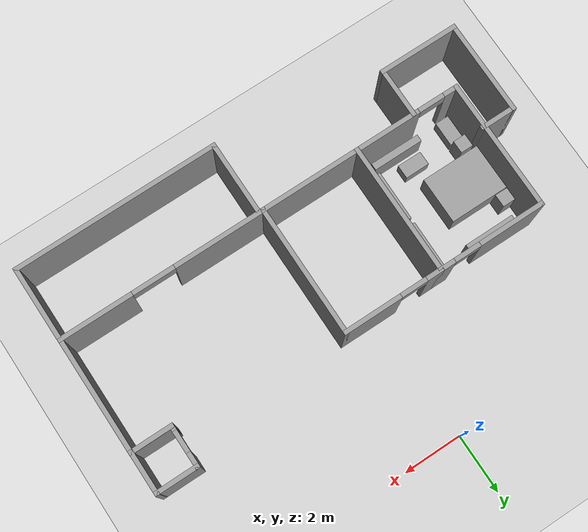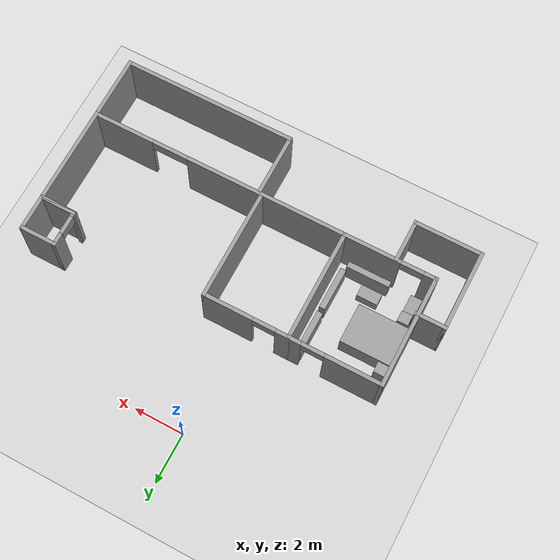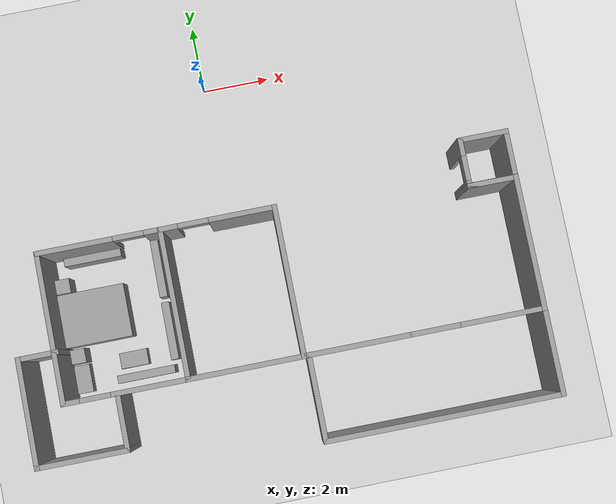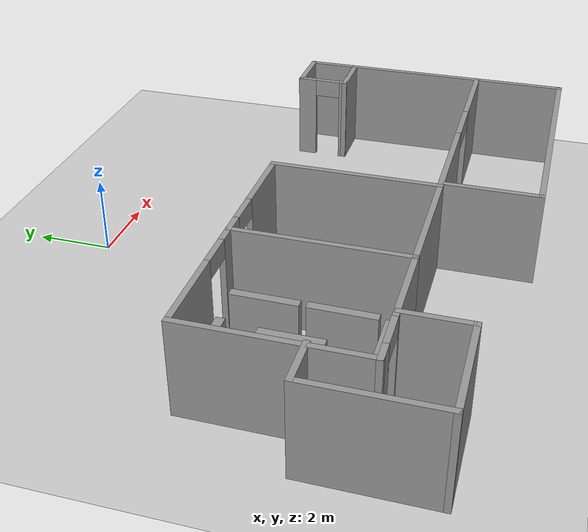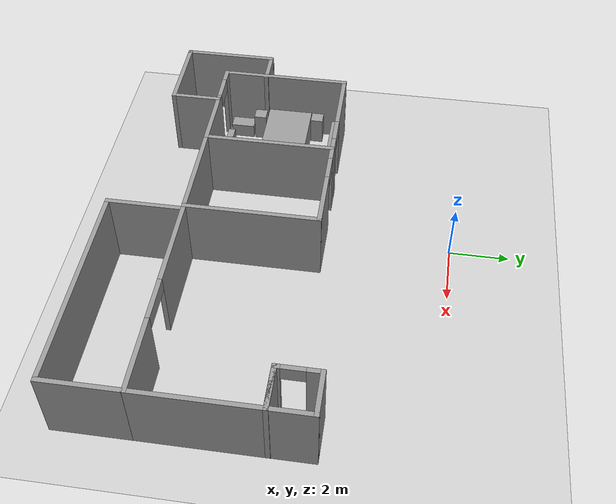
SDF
<sdf version="1.6">
 <world name="default">
  <model name="ground_plane">
   <static>1</static>
   <link name="link">
    <collision name="collision">
     <geometry><plane><normal>0 0 1</normal><size>100 100</size></plane></geometry>
     <surface><friction><ode><mu>100</mu><mu2>50</mu2></ode></friction></surface>
    </collision>
    <visual name="visual">
     <cast_shadows>0</cast_shadows>
     <geometry><plane><normal>0 0 1</normal><size>100 100</size></plane></geometry>
     <material>
      <script><uri>file://media/materials/scripts/gazebo.material</uri><name>Gazebo/Grey</name></script>
     </material>
    </visual>
   </link>
  </model>
  <model name="cma_quartos">
   <pose>-2.58169 -7.26456 0 0 -0 0</pose>
   <link name="Wall_0">
    <collision name="Wall_0_Collision">
     <geometry><box><size>4.5 0.15 2.5</size></box></geometry>
     <pose>0 0 1.25 0 -0 0</pose>
    </collision>
    <visual name="Wall_0_Visual">
     <pose>0 0 1.25 0 -0 0</pose>
     <geometry><box><size>4.5 0.15 2.5</size></box></geometry>
     <material>
      <script><uri>file://media/materials/scripts/gazebo.material</uri><name>Gazebo/Grey</name></script>
      <ambient>1 1 1 1</ambient>
     </material>
    </visual>
    <pose>0.645 0.81 0 0 0 -1.5708</pose>
   </link>
   <link name="Wall_1">
    <pose>-1.155 -1.365 0 0 -0 3.14159</pose>
    <visual name="Wall_1_Visual_0">
     <pose>-0.7225 0 1.25 0 -0 0</pose>
     <geometry><box><size>2.305 0.15 2.5</size></box></geometry>
     <material>
      <script><uri>file://media/materials/scripts/gazebo.material</uri><name>Gazebo/Grey</name></script>
      <ambient>1 1 1 1</ambient>
     </material>
    </visual>
    <collision name="Wall_1_Collision_0">
     <geometry><box><size>2.305 0.15 2.5</size></box></geometry>
     <pose>-0.7225 0 1.25 0 -0 0</pose>
    </collision>
    <visual name="Wall_1_Visual_1">
     <pose>1.6025 0 1.25 0 -0 0</pose>
     <geometry><box><size>0.545 0.15 2.5</size></box></geometry>
     <material>
      <script><uri>file://media/materials/scripts/gazebo.material</uri><name>Gazebo/Grey</name></script>
      <ambient>1 1 1 1</ambient>
     </material>
    </visual>
    <collision name="Wall_1_Collision_1">
     <geometry><box><size>0.545 0.15 2.5</size></box></geometry>
     <pose>1.6025 0 1.25 0 -0 0</pose>
    </collision>
    <visual name="Wall_1_Visual_2">
     <pose>0.88 0 2.25 0 -0 0</pose>
     <geometry><box><size>0.9 0.15 0.5</size></box></geometry>
     <material>
      <script><uri>file://media/materials/scripts/gazebo.material</uri><name>Gazebo/Grey</name></script>
      <ambient>1 1 1 1</ambient>
     </material>
    </visual>
    <collision name="Wall_1_Collision_2">
     <geometry><box><size>0.9 0.15 0.5</size></box></geometry>
     <pose>0.88 0 2.25 0 -0 0</pose>
    </collision>
   </link>
   <link name="Wall_10">
    <collision name="Wall_10_Collision">
     <geometry><box><size>1.75 0.15 2.5</size></box></geometry>
     <pose>0 0 1.25 0 -0 0</pose>
    </collision>
    <visual name="Wall_10_Visual">
     <pose>0 0 1.25 0 -0 0</pose>
     <geometry><box><size>1.75 0.15 2.5</size></box></geometry>
     <material>
      <script><uri>file://media/materials/scripts/gazebo.material</uri><name>Gazebo/Grey</name></script>
      <ambient>1 1 1 1</ambient>
     </material>
    </visual>
    <pose>-1.395 -2.185 0 0 0 -1.5708</pose>
   </link>
   <link name="Wall_11">
    <collision name="Wall_11_Collision">
     <geometry><box><size>2.75 0.15 2.5</size></box></geometry>
     <pose>0 0 1.25 0 -0 0</pose>
    </collision>
    <visual name="Wall_11_Visual">
     <pose>0 0 1.25 0 -0 0</pose>
     <geometry><box><size>2.75 0.15 2.5</size></box></geometry>
     <material>
      <script><uri>file://media/materials/scripts/gazebo.material</uri><name>Gazebo/Grey</name></script>
      <ambient>1 1 1 1</ambient>
     </material>
    </visual>
    <pose>-2.695 -2.985 0 0 -0 3.14159</pose>
   </link>
   <link name="Wall_12">
    <collision name="Wall_12_Collision">
     <geometry><box><size>3.25 0.15 2.5</size></box></geometry>
     <pose>0 0 1.25 0 -0 0</pose>
    </collision>
    <visual name="Wall_12_Visual">
     <pose>0 0 1.25 0 -0 0</pose>
     <geometry><box><size>3.25 0.15 2.5</size></box></geometry>
     <material>
      <script><uri>file://media/materials/scripts/gazebo.material</uri><name>Gazebo/Grey</name></script>
      <ambient>1 1 1 1</ambient>
     </material>
    </visual>
    <pose>-3.995 -1.435 0 0 -0 1.5708</pose>
   </link>
   <link name="Wall_13">
    <collision name="Wall_13_Collision">
     <geometry><box><size>1.25 0.15 2.5</size></box></geometry>
     <pose>0 0 1.25 0 -0 0</pose>
    </collision>
    <visual name="Wall_13_Visual">
     <pose>0 0 1.25 0 -0 0</pose>
     <geometry><box><size>1.25 0.15 2.5</size></box></geometry>
     <material>
      <script><uri>file://media/materials/scripts/gazebo.material</uri><name>Gazebo/Grey</name></script>
      <ambient>1 1 1 1</ambient>
     </material>
    </visual>
    <pose>-3.445 0.115 0 0 -0 0</pose>
   </link>
   <link name="Wall_2">
    <collision name="Wall_2_Collision">
     <geometry><box><size>4.5 0.15 2.5</size></box></geometry>
     <pose>0 0 1.25 0 -0 0</pose>
    </collision>
    <visual name="Wall_2_Visual">
     <pose>0 0 1.25 0 -0 0</pose>
     <geometry><box><size>4.5 0.15 2.5</size></box></geometry>
     <material>
      <script><uri>file://media/materials/scripts/gazebo.material</uri><name>Gazebo/Grey</name></script>
      <ambient>1 1 1 1</ambient>
     </material>
    </visual>
    <pose>-2.955 0.81 0 0 -0 1.5708</pose>
   </link>
   <link name="Wall_3">
    <pose>-1.155 2.985 0 0 -0 0</pose>
    <visual name="Wall_3_Visual_0">
     <pose>-0.7325 0 1.25 0 -0 0</pose>
     <geometry><box><size>2.285 0.15 2.5</size></box></geometry>
     <material>
      <script><uri>file://media/materials/scripts/gazebo.material</uri><name>Gazebo/Grey</name></script>
      <ambient>1 1 1 1</ambient>
     </material>
    </visual>
    <collision name="Wall_3_Collision_0">
     <geometry><box><size>2.285 0.15 2.5</size></box></geometry>
     <pose>-0.7325 0 1.25 0 -0 0</pose>
    </collision>
    <visual name="Wall_3_Visual_1">
     <pose>1.5925 0 1.25 0 -0 0</pose>
     <geometry><box><size>0.565 0.15 2.5</size></box></geometry>
     <material>
      <script><uri>file://media/materials/scripts/gazebo.material</uri><name>Gazebo/Grey</name></script>
      <ambient>1 1 1 1</ambient>
     </material>
    </visual>
    <collision name="Wall_3_Collision_1">
     <geometry><box><size>0.565 0.15 2.5</size></box></geometry>
     <pose>1.5925 0 1.25 0 -0 0</pose>
    </collision>
    <visual name="Wall_3_Visual_2">
     <pose>0.86 0 2.25 0 -0 0</pose>
     <geometry><box><size>0.9 0.15 0.5</size></box></geometry>
     <material>
      <script><uri>file://media/materials/scripts/gazebo.material</uri><name>Gazebo/Grey</name></script>
      <ambient>1 1 1 1</ambient>
     </material>
    </visual>
    <collision name="Wall_3_Collision_2">
     <geometry><box><size>0.9 0.15 0.5</size></box></geometry>
     <pose>0.86 0 2.25 0 -0 0</pose>
    </collision>
   </link>
   <link name="Wall_6">
    <pose>2.32 2.985 0 0 -0 0</pose>
    <visual name="Wall_6_Visual_0">
     <pose>-1.4575 0 1.25 0 -0 0</pose>
     <geometry><box><size>0.585 0.15 2.5</size></box></geometry>
     <material>
      <script><uri>file://media/materials/scripts/gazebo.material</uri><name>Gazebo/Grey</name></script>
      <ambient>1 1 1 1</ambient>
     </material>
    </visual>
    <collision name="Wall_6_Collision_0">
     <geometry><box><size>0.585 0.15 2.5</size></box></geometry>
     <pose>-1.4575 0 1.25 0 -0 0</pose>
    </collision>
    <visual name="Wall_6_Visual_1">
     <pose>0.7425 0 1.25 0 -0 0</pose>
     <geometry><box><size>2.015 0.15 2.5</size></box></geometry>
     <material>
      <script><uri>file://media/materials/scripts/gazebo.material</uri><name>Gazebo/Grey</name></script>
      <ambient>1 1 1 1</ambient>
     </material>
    </visual>
    <collision name="Wall_6_Collision_1">
     <geometry><box><size>2.015 0.15 2.5</size></box></geometry>
     <pose>0.7425 0 1.25 0 -0 0</pose>
    </collision>
    <visual name="Wall_6_Visual_2">
     <pose>-0.715 0 2.25 0 -0 0</pose>
     <geometry><box><size>0.9 0.15 0.5</size></box></geometry>
     <material>
      <script><uri>file://media/materials/scripts/gazebo.material</uri><name>Gazebo/Grey</name></script>
      <ambient>1 1 1 1</ambient>
     </material>
    </visual>
    <collision name="Wall_6_Collision_2">
     <geometry><box><size>0.9 0.15 0.5</size></box></geometry>
     <pose>-0.715 0 2.25 0 -0 0</pose>
    </collision>
   </link>
   <link name="Wall_7">
    <collision name="Wall_7_Collision">
     <geometry><box><size>4.5 0.15 2.5</size></box></geometry>
     <pose>0 0 1.25 0 -0 0</pose>
    </collision>
    <visual name="Wall_7_Visual">
     <pose>0 0 1.25 0 -0 0</pose>
     <geometry><box><size>4.5 0.15 2.5</size></box></geometry>
     <material>
      <script><uri>file://media/materials/scripts/gazebo.material</uri><name>Gazebo/Grey</name></script>
      <ambient>1 1 1 1</ambient>
     </material>
    </visual>
    <pose>3.995 0.81 0 0 0 -1.5708</pose>
   </link>
   <link name="Wall_8">
    <collision name="Wall_8_Collision">
     <geometry><box><size>3.5 0.15 2.5</size></box></geometry>
     <pose>0 0 1.25 0 -0 0</pose>
    </collision>
    <visual name="Wall_8_Visual">
     <pose>0 0 1.25 0 -0 0</pose>
     <geometry><box><size>3.5 0.15 2.5</size></box></geometry>
     <material>
      <script><uri>file://media/materials/scripts/gazebo.material</uri><name>Gazebo/Grey</name></script>
      <ambient>1 1 1 1</ambient>
     </material>
    </visual>
    <pose>2.32 -1.365 0 0 -0 3.14159</pose>
   </link>
   <static>1</static>
  </model>
  <model name="cma_parede_L">
   <pose>4.97628 -6.69992 0 0 -0 0</pose>
   <link name="Wall_0">
    <pose>0 -1.925 0 0 -0 0</pose>
    <visual name="Wall_0_Visual_0">
     <pose>-1.985 0 1.25 0 -0 0</pose>
     <geometry><box><size>3.03 0.15 2.5</size></box></geometry>
     <material>
      <script><uri>file://media/materials/scripts/gazebo.material</uri><name>Gazebo/Grey</name></script>
      <ambient>1 1 1 1</ambient>
     </material>
    </visual>
    <collision name="Wall_0_Collision_0">
     <geometry><box><size>3.03 0.15 2.5</size></box></geometry>
     <pose>-1.985 0 1.25 0 -0 0</pose>
    </collision>
    <visual name="Wall_0_Visual_1">
     <pose>2.24 0 1.25 0 -0 0</pose>
     <geometry><box><size>2.52 0.15 2.5</size></box></geometry>
     <material>
      <script><uri>file://media/materials/scripts/gazebo.material</uri><name>Gazebo/Grey</name></script>
      <ambient>1 1 1 1</ambient>
     </material>
    </visual>
    <collision name="Wall_0_Collision_1">
     <geometry><box><size>2.52 0.15 2.5</size></box></geometry>
     <pose>2.24 0 1.25 0 -0 0</pose>
    </collision>
    <visual name="Wall_0_Visual_2">
     <pose>0.255 0 2.25 0 -0 0</pose>
     <geometry><box><size>1.45 0.15 0.5</size></box></geometry>
     <material>
      <script><uri>file://media/materials/scripts/gazebo.material</uri><name>Gazebo/Grey</name></script>
      <ambient>1 1 1 1</ambient>
     </material>
    </visual>
    <collision name="Wall_0_Collision_2">
     <geometry><box><size>1.45 0.15 0.5</size></box></geometry>
     <pose>0.255 0 2.25 0 -0 0</pose>
    </collision>
   </link>
   <link name="Wall_1">
    <collision name="Wall_1_Collision">
     <geometry><box><size>4 0.15 2.5</size></box></geometry>
     <pose>0 0 1.25 0 -0 0</pose>
    </collision>
    <visual name="Wall_1_Visual">
     <pose>0 0 1.25 0 -0 0</pose>
     <geometry><box><size>4 0.15 2.5</size></box></geometry>
     <material>
      <script><uri>file://media/materials/scripts/gazebo.material</uri><name>Gazebo/Grey</name></script>
      <ambient>1 1 1 1</ambient>
     </material>
    </visual>
    <pose>3.425 0 0 0 -0 1.5708</pose>
   </link>
   <link name="Wall_2">
    <collision name="Wall_2_Collision">
     <geometry><box><size>1.5 0.15 2.5</size></box></geometry>
     <pose>0 0 1.25 0 -0 0</pose>
    </collision>
    <visual name="Wall_2_Visual">
     <pose>0 0 1.25 0 -0 0</pose>
     <geometry><box><size>1.5 0.15 2.5</size></box></geometry>
     <material>
      <script><uri>file://media/materials/scripts/gazebo.material</uri><name>Gazebo/Grey</name></script>
      <ambient>1 1 1 1</ambient>
     </material>
    </visual>
    <pose>2.75 1.925 0 0 -0 3.14159</pose>
   </link>
   <static>1</static>
  </model>
  <model name="cma_lavabo">
   <pose>7.72297 -4.09302 0 0 -0 0</pose>
   <link name="Wall_4">
    <pose>-0.675 0 0 0 -0 1.5708</pose>
    <visual name="Wall_4_Visual_0">
     <pose>-0.635 0 1.25 0 -0 0</pose>
     <geometry><box><size>0.23 0.15 2.5</size></box></geometry>
     <material>
      <script><uri>file://media/materials/scripts/gazebo.material</uri><name>Gazebo/Grey</name></script>
      <ambient>1 1 1 1</ambient>
     </material>
    </visual>
    <collision name="Wall_4_Collision_0">
     <geometry><box><size>0.23 0.15 2.5</size></box></geometry>
     <pose>-0.635 0 1.25 0 -0 0</pose>
    </collision>
    <visual name="Wall_4_Visual_1">
     <pose>0.48 0 1.25 0 -0 0</pose>
     <geometry><box><size>0.54 0.15 2.5</size></box></geometry>
     <material>
      <script><uri>file://media/materials/scripts/gazebo.material</uri><name>Gazebo/Grey</name></script>
      <ambient>1 1 1 1</ambient>
     </material>
    </visual>
    <collision name="Wall_4_Collision_1">
     <geometry><box><size>0.54 0.15 2.5</size></box></geometry>
     <pose>0.48 0 1.25 0 -0 0</pose>
    </collision>
    <visual name="Wall_4_Visual_2">
     <pose>-0.155 0 2.25 0 -0 0</pose>
     <geometry><box><size>0.73 0.15 0.5</size></box></geometry>
     <material>
      <script><uri>file://media/materials/scripts/gazebo.material</uri><name>Gazebo/Grey</name></script>
      <ambient>1 1 1 1</ambient>
     </material>
    </visual>
    <collision name="Wall_4_Collision_2">
     <geometry><box><size>0.73 0.15 0.5</size></box></geometry>
     <pose>-0.155 0 2.25 0 -0 0</pose>
    </collision>
   </link>
   <link name="Wall_5">
    <collision name="Wall_5_Collision">
     <geometry><box><size>1.5 0.15 2.5</size></box></geometry>
     <pose>0 0 1.25 0 -0 0</pose>
    </collision>
    <visual name="Wall_5_Visual">
     <pose>0 0 1.25 0 -0 0</pose>
     <geometry><box><size>1.5 0.15 2.5</size></box></geometry>
     <material>
      <script><uri>file://media/materials/scripts/gazebo.material</uri><name>Gazebo/Grey</name></script>
      <ambient>1 1 1 1</ambient>
     </material>
    </visual>
    <pose>0 0.675 0 0 -0 0</pose>
   </link>
   <link name="Wall_6">
    <collision name="Wall_6_Collision">
     <geometry><box><size>1.5 0.15 2.5</size></box></geometry>
     <pose>0 0 1.25 0 -0 0</pose>
    </collision>
    <visual name="Wall_6_Visual">
     <pose>0 0 1.25 0 -0 0</pose>
     <geometry><box><size>1.5 0.15 2.5</size></box></geometry>
     <material>
      <script><uri>file://media/materials/scripts/gazebo.material</uri><name>Gazebo/Grey</name></script>
      <ambient>1 1 1 1</ambient>
     </material>
    </visual>
    <pose>0.675 0 0 0 0 -1.5708</pose>
   </link>
   <link name="Wall_7">
    <collision name="Wall_7_Collision">
     <geometry><box><size>1.5 0.15 2.5</size></box></geometry>
     <pose>0 0 1.25 0 -0 0</pose>
    </collision>
    <visual name="Wall_7_Visual">
     <pose>0 0 1.25 0 -0 0</pose>
     <geometry><box><size>1.5 0.15 2.5</size></box></geometry>
     <material>
      <script><uri>file://media/materials/scripts/gazebo.material</uri><name>Gazebo/Grey</name></script>
      <ambient>1 1 1 1</ambient>
     </material>
    </visual>
    <pose>0 -0.675 0 0 -0 3.14159</pose>
   </link>
   <static>1</static>
  </model>
  <model name="cma_U">
   <pose>4.97895 -9.92408 0 0 -0 0</pose>
   <link name="Wall_16">
    <collision name="Wall_16_Collision">
     <geometry><box><size>2.5 0.15 2.5</size></box></geometry>
     <pose>0 0 1.25 0 -0 0</pose>
    </collision>
    <visual name="Wall_16_Visual">
     <pose>0 0 1.25 0 -0 0</pose>
     <geometry><box><size>2.5 0.15 2.5</size></box></geometry>
     <material>
      <script><uri>file://media/materials/scripts/gazebo.material</uri><name>Gazebo/Grey</name></script>
      <ambient>1 1 1 1</ambient>
     </material>
    </visual>
    <pose>-3.425 0 0 0 0 -1.5708</pose>
   </link>
   <link name="Wall_17">
    <collision name="Wall_17_Collision">
     <geometry><box><size>7 0.15 2.5</size></box></geometry>
     <pose>0 0 1.25 0 -0 0</pose>
    </collision>
    <visual name="Wall_17_Visual">
     <pose>0 0 1.25 0 -0 0</pose>
     <geometry><box><size>7 0.15 2.5</size></box></geometry>
     <material>
      <script><uri>file://media/materials/scripts/gazebo.material</uri><name>Gazebo/Grey</name></script>
      <ambient>1 1 1 1</ambient>
     </material>
    </visual>
    <pose>0 -1.175 0 0 -0 0</pose>
   </link>
   <link name="Wall_18">
    <collision name="Wall_18_Collision">
     <geometry><box><size>2.5 0.15 2.5</size></box></geometry>
     <pose>0 0 1.25 0 -0 0</pose>
    </collision>
    <visual name="Wall_18_Visual">
     <pose>0 0 1.25 0 -0 0</pose>
     <geometry><box><size>2.5 0.15 2.5</size></box></geometry>
     <material>
      <script><uri>file://media/materials/scripts/gazebo.material</uri><name>Gazebo/Grey</name></script>
      <ambient>1 1 1 1</ambient>
     </material>
    </visual>
    <pose>3.425 0 0 0 -0 1.5708</pose>
   </link>
   <static>1</static>
  </model>
  <model name="cma_cama_c">
   <link name="link_0">
    <pose>5e-06 -4e-06 0 0 -0 0</pose>
    <inertial>
     <mass>3.18358</mass>
     <inertia><ixx>0.934862</ixx><ixy>0</ixy><ixz>0</ixz><iyy>1.33069</iyy><iyz>0</iyz><izz>1.73496</izz></inertia>
    </inertial>
    <visual name="visual">
     <geometry><box><size>2.00394 1.58866 1</size></box></geometry>
     <material>
      <lighting>1</lighting>
      <script><uri>file://media/materials/scripts/gazebo.material</uri><name>Gazebo/Grey</name></script>
      <ambient>0.3 0.3 0.3 1</ambient>
      <diffuse>0.7 0.7 0.7 1</diffuse>
      <specular>0.01 0.01 0.01 1</specular>
      <emissive>0 0 0 1</emissive>
     </material>
    </visual>
    <collision name="collision">
     <geometry><box><size>2.00394 1.58866 1</size></box></geometry>
     <surface>
      <friction>
       <ode><mu>1</mu><mu2>1</mu2><fdir1>0 0 0</fdir1><slip1>0</slip1><slip2>0</slip2></ode>
       <torsional>
        <coefficient>1</coefficient>
        <patch_radius>0</patch_radius>
        <surface_radius>0</surface_radius>
        <use_patch_radius>1</use_patch_radius>
        <ode><slip>0</slip></ode>
       </torsional>
      </friction>
      <bounce><restitution_coefficient>0</restitution_coefficient><threshold>1e+06</threshold></bounce>
      <contact>
       <collide_without_contact>0</collide_without_contact>
       <collide_without_contact_bitmask>1</collide_without_contact_bitmask>
       <collide_bitmask>1</collide_bitmask>
       <ode>
        <soft_cfm>0</soft_cfm>
        <soft_erp>0.2</soft_erp>
        <kp>1e+13</kp>
        <kd>1</kd>
        <max_vel>0.01</max_vel>
        <min_depth>0</min_depth>
       </ode>
       <bullet>
        <split_impulse>1</split_impulse>
        <split_impulse_penetration_threshold>-0.01</split_impulse_penetration_threshold>
        <soft_cfm>0</soft_cfm>
        <soft_erp>0.2</soft_erp>
        <kp>1e+13</kp>
        <kd>1</kd>
       </bullet>
      </contact>
     </surface>
    </collision>
   </link>
   <static>0</static>
   <pose>-4.43933 -6.24816 0.5 0 -0 0</pose>
  </model>
  <model name="cma_armario_0">
   <link name="link_0">
    <pose>1.32157 0.885178 0.5 0 -0 0</pose>
    <inertial>
     <mass>0.402376</mass>
     <inertia>
      <ixx>0.0353686</ixx>
      <ixy>0</ixy>
      <ixz>0</ixz>
      <iyy>0.132616</iyy>
      <iyz>0</iyz>
      <izz>0.100922</izz>
     </inertia>
    </inertial>
    <visual name="visual">
     <geometry><box><size>1.71877 0.234069 1</size></box></geometry>
     <material>
      <lighting>1</lighting>
      <script><uri>file://media/materials/scripts/gazebo.material</uri><name>Gazebo/Grey</name></script>
      <ambient>0.3 0.3 0.3 1</ambient>
      <diffuse>0.7 0.7 0.7 1</diffuse>
      <specular>0.01 0.01 0.01 1</specular>
      <emissive>0 0 0 1</emissive>
     </material>
    </visual>
    <collision name="collision">
     <geometry><box><size>1.71877 0.234069 1</size></box></geometry>
     <surface>
      <friction>
       <ode><mu>1</mu><mu2>1</mu2><fdir1>0 0 0</fdir1><slip1>0</slip1><slip2>0</slip2></ode>
       <torsional>
        <coefficient>1</coefficient>
        <patch_radius>0</patch_radius>
        <surface_radius>0</surface_radius>
        <use_patch_radius>1</use_patch_radius>
        <ode><slip>0</slip></ode>
       </torsional>
      </friction>
      <bounce><restitution_coefficient>0</restitution_coefficient><threshold>1e+06</threshold></bounce>
      <contact>
       <collide_without_contact>0</collide_without_contact>
       <collide_without_contact_bitmask>1</collide_without_contact_bitmask>
       <collide_bitmask>1</collide_bitmask>
       <ode>
        <soft_cfm>0</soft_cfm>
        <soft_erp>0.2</soft_erp>
        <kp>1e+13</kp>
        <kd>1</kd>
        <max_vel>0.01</max_vel>
        <min_depth>0</min_depth>
       </ode>
       <bullet>
        <split_impulse>1</split_impulse>
        <split_impulse_penetration_threshold>-0.01</split_impulse_penetration_threshold>
        <soft_cfm>0</soft_cfm>
        <soft_erp>0.2</soft_erp>
        <kp>1e+13</kp>
        <kd>1</kd>
       </bullet>
      </contact>
     </surface>
    </collision>
   </link>
   <static>0</static>
   <pose>-5.51793 -5.41207 0 0 -0 0</pose>
  </model>
  <model name="cma_gaveteiro_pequeno_1">
   <link name="link_0">
    <pose>0.256174 1.25055 0.5 0 -0 0</pose>
    <inertial>
     <mass>0.187186</mass>
     <inertia>
      <ixx>0.01851</ixx>
      <ixy>0</ixy>
      <ixz>0</ixz>
      <iyy>0.0185276</iyy>
      <iyz>0</iyz>
      <izz>0.00583981</izz>
     </inertia>
    </inertial>
    <visual name="visual">
     <geometry><box><size>0.433317 0.432002 1</size></box></geometry>
     <material>
      <lighting>1</lighting>
      <script><uri>file://media/materials/scripts/gazebo.material</uri><name>Gazebo/Grey</name></script>
      <ambient>0.3 0.3 0.3 1</ambient>
      <diffuse>0.7 0.7 0.7 1</diffuse>
      <specular>0.01 0.01 0.01 1</specular>
      <emissive>0 0 0 1</emissive>
     </material>
    </visual>
    <collision name="collision">
     <geometry><box><size>0.433317 0.432002 1</size></box></geometry>
     <surface>
      <friction>
       <ode><mu>1</mu><mu2>1</mu2><fdir1>0 0 0</fdir1><slip1>0</slip1><slip2>0</slip2></ode>
       <torsional>
        <coefficient>1</coefficient>
        <patch_radius>0</patch_radius>
        <surface_radius>0</surface_radius>
        <use_patch_radius>1</use_patch_radius>
        <ode><slip>0</slip></ode>
       </torsional>
      </friction>
      <bounce><restitution_coefficient>0</restitution_coefficient><threshold>1e+06</threshold></bounce>
      <contact>
       <collide_without_contact>0</collide_without_contact>
       <collide_without_contact_bitmask>1</collide_without_contact_bitmask>
       <collide_bitmask>1</collide_bitmask>
       <ode>
        <soft_cfm>0</soft_cfm>
        <soft_erp>0.2</soft_erp>
        <kp>1e+13</kp>
        <kd>1</kd>
        <max_vel>0.01</max_vel>
        <min_depth>0</min_depth>
       </ode>
       <bullet>
        <split_impulse>1</split_impulse>
        <split_impulse_penetration_threshold>-0.01</split_impulse_penetration_threshold>
        <soft_cfm>0</soft_cfm>
        <soft_erp>0.2</soft_erp>
        <kp>1e+13</kp>
        <kd>1</kd>
       </bullet>
      </contact>
     </surface>
    </collision>
   </link>
   <static>0</static>
   <pose>-5.47475 -6.46325 0 0 -0 0</pose>
  </model>
  <model name="cma_armario_s_0">
   <link name="link_1">
    <pose>-2e-06 -3e-06 0 0 -0 0</pose>
    <inertial>
     <mass>0.390159</mass>
     <inertia>
      <ixx>0.039647</ixx>
      <ixy>0</ixy>
      <ixz>0</ixz>
      <iyy>0.0550708</iyy>
      <iyz>0</iyz>
      <izz>0.0296912</izz>
     </inertia>
    </inertial>
    <visual name="visual">
     <geometry><box><size>0.832942 0.468397 1</size></box></geometry>
     <material>
      <lighting>1</lighting>
      <script><uri>file://media/materials/scripts/gazebo.material</uri><name>Gazebo/Grey</name></script>
      <ambient>0.3 0.3 0.3 1</ambient>
      <diffuse>0.7 0.7 0.7 1</diffuse>
      <specular>0.01 0.01 0.01 1</specular>
      <emissive>0 0 0 1</emissive>
     </material>
    </visual>
    <collision name="collision">
     <geometry><box><size>0.832942 0.468397 1</size></box></geometry>
     <surface>
      <friction>
       <ode><mu>1</mu><mu2>1</mu2><fdir1>0 0 0</fdir1><slip1>0</slip1><slip2>0</slip2></ode>
       <torsional>
        <coefficient>1</coefficient>
        <patch_radius>0</patch_radius>
        <surface_radius>0</surface_radius>
        <use_patch_radius>1</use_patch_radius>
        <ode><slip>0</slip></ode>
       </torsional>
      </friction>
      <bounce><restitution_coefficient>0</restitution_coefficient><threshold>1e+06</threshold></bounce>
      <contact>
       <collide_without_contact>0</collide_without_contact>
       <collide_without_contact_bitmask>1</collide_without_contact_bitmask>
       <collide_bitmask>1</collide_bitmask>
       <ode>
        <soft_cfm>0</soft_cfm>
        <soft_erp>0.2</soft_erp>
        <kp>1e+13</kp>
        <kd>1</kd>
        <max_vel>0.01</max_vel>
        <min_depth>0</min_depth>
       </ode>
       <bullet>
        <split_impulse>1</split_impulse>
        <split_impulse_penetration_threshold>-0.01</split_impulse_penetration_threshold>
        <soft_cfm>0</soft_cfm>
        <soft_erp>0.2</soft_erp>
        <kp>1e+13</kp>
        <kd>1</kd>
       </bullet>
      </contact>
     </surface>
    </collision>
   </link>
   <static>0</static>
   <pose>-5.16836 -8.01553 0 0 0 -1.57518</pose>
  </model>
  <model name="cma_gaveteiro_pequeno_2">
   <link name="link_0">
    <pose>0.256174 1.25055 0.5 0 -0 0</pose>
    <inertial>
     <mass>0.187186</mass>
     <inertia>
      <ixx>0.01851</ixx>
      <ixy>0</ixy>
      <ixz>0</ixz>
      <iyy>0.0185276</iyy>
      <iyz>0</iyz>
      <izz>0.00583981</izz>
     </inertia>
    </inertial>
    <visual name="visual">
     <geometry><box><size>0.433317 0.432002 1</size></box></geometry>
     <material>
      <lighting>1</lighting>
      <script><uri>file://media/materials/scripts/gazebo.material</uri><name>Gazebo/Grey</name></script>
      <ambient>0.3 0.3 0.3 1</ambient>
      <diffuse>0.7 0.7 0.7 1</diffuse>
      <specular>0.01 0.01 0.01 1</specular>
      <emissive>0 0 0 1</emissive>
     </material>
    </visual>
    <collision name="collision">
     <geometry><box><size>0.433317 0.432002 1</size></box></geometry>
     <surface>
      <friction>
       <ode><mu>1</mu><mu2>1</mu2><fdir1>0 0 0</fdir1><slip1>0</slip1><slip2>0</slip2></ode>
       <torsional>
        <coefficient>1</coefficient>
        <patch_radius>0</patch_radius>
        <surface_radius>0</surface_radius>
        <use_patch_radius>1</use_patch_radius>
        <ode><slip>0</slip></ode>
       </torsional>
      </friction>
      <bounce><restitution_coefficient>0</restitution_coefficient><threshold>1e+06</threshold></bounce>
      <contact>
       <collide_without_contact>0</collide_without_contact>
       <collide_without_contact_bitmask>1</collide_without_contact_bitmask>
       <collide_bitmask>1</collide_bitmask>
       <ode>
        <soft_cfm>0</soft_cfm>
        <soft_erp>0.2</soft_erp>
        <kp>1e+13</kp>
        <kd>1</kd>
        <max_vel>0.01</max_vel>
        <min_depth>0</min_depth>
       </ode>
       <bullet>
        <split_impulse>1</split_impulse>
        <split_impulse_penetration_threshold>-0.01</split_impulse_penetration_threshold>
        <soft_cfm>0</soft_cfm>
        <soft_erp>0.2</soft_erp>
        <kp>1e+13</kp>
        <kd>1</kd>
       </bullet>
      </contact>
     </surface>
    </collision>
   </link>
   <static>0</static>
   <pose>-5.39159 -8.58553 0 0 -0 0</pose>
  </model>
  <model name="cma_armario_s_1">
   <link name="link_1">
    <pose>-2e-06 -3e-06 0 0 -0 0</pose>
    <inertial>
     <mass>0.390159</mass>
     <inertia>
      <ixx>0.039647</ixx>
      <ixy>0</ixy>
      <ixz>0</ixz>
      <iyy>0.0550708</iyy>
      <iyz>0</iyz>
      <izz>0.0296912</izz>
     </inertia>
    </inertial>
    <visual name="visual">
     <geometry><box><size>0.832942 0.468397 1</size></box></geometry>
     <material>
      <lighting>1</lighting>
      <script><uri>file://media/materials/scripts/gazebo.material</uri><name>Gazebo/Grey</name></script>
      <ambient>0.3 0.3 0.3 1</ambient>
      <diffuse>0.7 0.7 0.7 1</diffuse>
      <specular>0.01 0.01 0.01 1</specular>
      <emissive>0 0 0 1</emissive>
     </material>
    </visual>
    <collision name="collision">
     <geometry><box><size>0.832942 0.468397 1</size></box></geometry>
     <surface>
      <friction>
       <ode><mu>1</mu><mu2>1</mu2><fdir1>0 0 0</fdir1><slip1>0</slip1><slip2>0</slip2></ode>
       <torsional>
        <coefficient>1</coefficient>
        <patch_radius>0</patch_radius>
        <surface_radius>0</surface_radius>
        <use_patch_radius>1</use_patch_radius>
        <ode><slip>0</slip></ode>
       </torsional>
      </friction>
      <bounce><restitution_coefficient>0</restitution_coefficient><threshold>1e+06</threshold></bounce>
      <contact>
       <collide_without_contact>0</collide_without_contact>
       <collide_without_contact_bitmask>1</collide_without_contact_bitmask>
       <collide_bitmask>1</collide_bitmask>
       <ode>
        <soft_cfm>0</soft_cfm>
        <soft_erp>0.2</soft_erp>
        <kp>1e+13</kp>
        <kd>1</kd>
        <max_vel>0.01</max_vel>
        <min_depth>0</min_depth>
       </ode>
       <bullet>
        <split_impulse>1</split_impulse>
        <split_impulse_penetration_threshold>-0.01</split_impulse_penetration_threshold>
        <soft_cfm>0</soft_cfm>
        <soft_erp>0.2</soft_erp>
        <kp>1e+13</kp>
        <kd>1</kd>
       </bullet>
      </contact>
     </surface>
    </collision>
   </link>
   <static>0</static>
   <pose>-3.57954 -7.70972 0 0 -0 0</pose>
  </model>
  <model name="cma_armario_1">
   <link name="link_0">
    <pose>1.32157 0.885178 0.5 0 -0 0</pose>
    <inertial>
     <mass>0.402376</mass>
     <inertia>
      <ixx>0.0353686</ixx>
      <ixy>0</ixy>
      <ixz>0</ixz>
      <iyy>0.132616</iyy>
      <iyz>0</iyz>
      <izz>0.100922</izz>
     </inertia>
    </inertial>
    <visual name="visual">
     <geometry><box><size>1.71877 0.234069 1</size></box></geometry>
     <material>
      <lighting>1</lighting>
      <script><uri>file://media/materials/scripts/gazebo.material</uri><name>Gazebo/Grey</name></script>
      <ambient>0.3 0.3 0.3 1</ambient>
      <diffuse>0.7 0.7 0.7 1</diffuse>
      <specular>0.01 0.01 0.01 1</specular>
      <emissive>0 0 0 1</emissive>
     </material>
    </visual>
    <collision name="collision">
     <geometry><box><size>1.71877 0.234069 1</size></box></geometry>
     <surface>
      <friction>
       <ode><mu>1</mu><mu2>1</mu2><fdir1>0 0 0</fdir1><slip1>0</slip1><slip2>0</slip2></ode>
       <torsional>
        <coefficient>1</coefficient>
        <patch_radius>0</patch_radius>
        <surface_radius>0</surface_radius>
        <use_patch_radius>1</use_patch_radius>
        <ode><slip>0</slip></ode>
       </torsional>
      </friction>
      <bounce><restitution_coefficient>0</restitution_coefficient><threshold>1e+06</threshold></bounce>
      <contact>
       <collide_without_contact>0</collide_without_contact>
       <collide_without_contact_bitmask>1</collide_without_contact_bitmask>
       <collide_bitmask>1</collide_bitmask>
       <ode>
        <soft_cfm>0</soft_cfm>
        <soft_erp>0.2</soft_erp>
        <kp>1e+13</kp>
        <kd>1</kd>
        <max_vel>0.01</max_vel>
        <min_depth>0</min_depth>
       </ode>
       <bullet>
        <split_impulse>1</split_impulse>
        <split_impulse_penetration_threshold>-0.01</split_impulse_penetration_threshold>
        <soft_cfm>0</soft_cfm>
        <soft_erp>0.2</soft_erp>
        <kp>1e+13</kp>
        <kd>1</kd>
       </bullet>
      </contact>
     </surface>
    </collision>
   </link>
   <static>0</static>
   <pose>-4.56655 -9.12333 0 0 -0 0</pose>
  </model>
  <model name="cma_armario_2">
   <link name="link_0">
    <pose>1.32157 0.885178 0.5 0 -0 0</pose>
    <inertial>
     <mass>0.402376</mass>
     <inertia>
      <ixx>0.0353686</ixx>
      <ixy>0</ixy>
      <ixz>0</ixz>
      <iyy>0.132616</iyy>
      <iyz>0</iyz>
      <izz>0.100922</izz>
     </inertia>
    </inertial>
    <visual name="visual">
     <geometry><box><size>1.71877 0.234069 1</size></box></geometry>
     <material>
      <lighting>1</lighting>
      <script><uri>file://media/materials/scripts/gazebo.material</uri><name>Gazebo/Grey</name></script>
      <ambient>0.3 0.3 0.3 1</ambient>
      <diffuse>0.7 0.7 0.7 1</diffuse>
      <specular>0.01 0.01 0.01 1</specular>
      <emissive>0 0 0 1</emissive>
     </material>
    </visual>
    <collision name="collision">
     <geometry><box><size>1.71877 0.234069 1</size></box></geometry>
     <surface>
      <friction>
       <ode><mu>1</mu><mu2>1</mu2><fdir1>0 0 0</fdir1><slip1>0</slip1><slip2>0</slip2></ode>
       <torsional>
        <coefficient>1</coefficient>
        <patch_radius>0</patch_radius>
        <surface_radius>0</surface_radius>
        <use_patch_radius>1</use_patch_radius>
        <ode><slip>0</slip></ode>
       </torsional>
      </friction>
      <bounce><restitution_coefficient>0</restitution_coefficient><threshold>1e+06</threshold></bounce>
      <contact>
       <collide_without_contact>0</collide_without_contact>
       <collide_without_contact_bitmask>1</collide_without_contact_bitmask>
       <collide_bitmask>1</collide_bitmask>
       <ode>
        <soft_cfm>0</soft_cfm>
        <soft_erp>0.2</soft_erp>
        <kp>1e+13</kp>
        <kd>1</kd>
        <max_vel>0.01</max_vel>
        <min_depth>0</min_depth>
       </ode>
       <bullet>
        <split_impulse>1</split_impulse>
        <split_impulse_penetration_threshold>-0.01</split_impulse_penetration_threshold>
        <soft_cfm>0</soft_cfm>
        <soft_erp>0.2</soft_erp>
        <kp>1e+13</kp>
        <kd>1</kd>
       </bullet>
      </contact>
     </surface>
    </collision>
   </link>
   <static>0</static>
   <pose>-1.44229 -6.56302 0 0 -0 1.56317</pose>
  </model>
  <model name="cma_armario_2_clone">
   <link name="link_0">
    <pose>1.32157 0.885178 0.5 0 -0 0</pose>
    <inertial>
     <mass>0.402376</mass>
     <inertia>
      <ixx>0.0353686</ixx>
      <ixy>0</ixy>
      <ixz>0</ixz>
      <iyy>0.132616</iyy>
      <iyz>0</iyz>
      <izz>0.100922</izz>
     </inertia>
    </inertial>
    <visual name="visual">
     <geometry><box><size>1.71877 0.234069 1</size></box></geometry>
     <material>
      <lighting>1</lighting>
      <script><uri>file://media/materials/scripts/gazebo.material</uri><name>Gazebo/Grey</name></script>
      <ambient>0.3 0.3 0.3 1</ambient>
      <diffuse>0.7 0.7 0.7 1</diffuse>
      <specular>0.01 0.01 0.01 1</specular>
      <emissive>0 0 0 1</emissive>
     </material>
    </visual>
    <collision name="collision">
     <geometry><box><size>1.71877 0.234069 1</size></box></geometry>
     <surface>
      <friction>
       <ode><mu>1</mu><mu2>1</mu2><fdir1>0 0 0</fdir1><slip1>0</slip1><slip2>0</slip2></ode>
       <torsional>
        <coefficient>1</coefficient>
        <patch_radius>0</patch_radius>
        <surface_radius>0</surface_radius>
        <use_patch_radius>1</use_patch_radius>
        <ode><slip>0</slip></ode>
       </torsional>
      </friction>
      <bounce><restitution_coefficient>0</restitution_coefficient><threshold>1e+06</threshold></bounce>
      <contact>
       <collide_without_contact>0</collide_without_contact>
       <collide_without_contact_bitmask>1</collide_without_contact_bitmask>
       <collide_bitmask>1</collide_bitmask>
       <ode>
        <soft_cfm>0</soft_cfm>
        <soft_erp>0.2</soft_erp>
        <kp>1e+13</kp>
        <kd>1</kd>
        <max_vel>0.01</max_vel>
        <min_depth>0</min_depth>
       </ode>
       <bullet>
        <split_impulse>1</split_impulse>
        <split_impulse_penetration_threshold>-0.01</split_impulse_penetration_threshold>
        <soft_cfm>0</soft_cfm>
        <soft_erp>0.2</soft_erp>
        <kp>1e+13</kp>
        <kd>1</kd>
       </bullet>
      </contact>
     </surface>
    </collision>
   </link>
   <static>0</static>
   <pose>-1.44883 -8.44594 0 0 -0 1.56317</pose>
  </model>
 </world>
</sdf>
